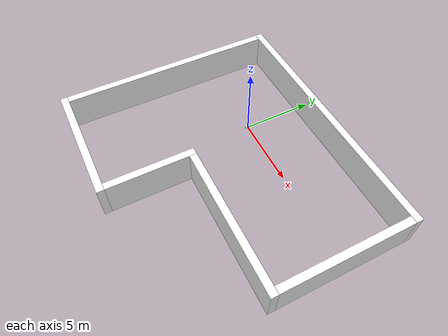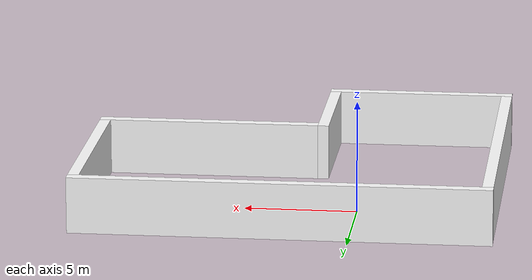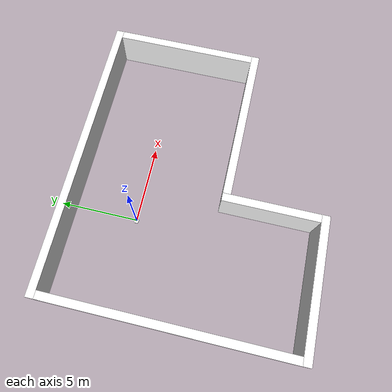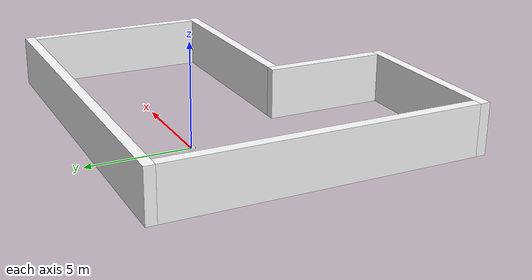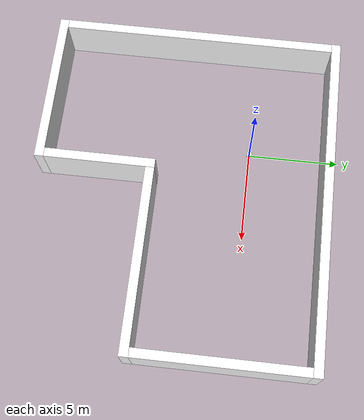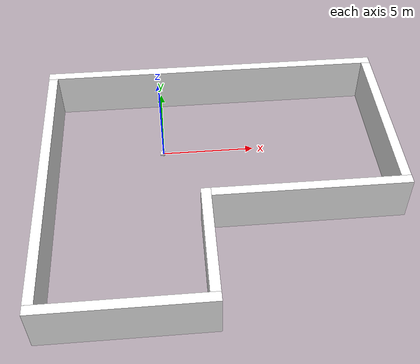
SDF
<sdf version="1.9">
 <world name="default">
  <plugin filename="gz-sim-physics-system" name="gz::sim::systems::Physics"/>
  <plugin filename="gz-sim-user-commands-system" name="gz::sim::systems::UserCommands"/>
  <plugin filename="gz-sim-scene-broadcaster-system" name="gz::sim::systems::SceneBroadcaster"/>
  <plugin filename="gz-sim-sensors-system" name="gz::sim::systems::Sensors">
   <render_engine>ogre2</render_engine>
  </plugin>
  <light type="directional" name="sun">
   <cast_shadows>0</cast_shadows>
   <pose>-5 -3 10 0 0 0</pose>
   <diffuse>1 1 1 1</diffuse>
   <specular>1 1 1 1</specular>
   <direction>0 0 -1</direction>
   <visualize>false</visualize>
  </light>
  <model name="ground_plane">
   <static>true</static>
   <link name="link">
    <collision name="collision">
     <geometry><plane><normal>0.0 0.0 1</normal><size>1 1</size></plane></geometry>
    </collision>
   </link>
  </model>
  <include><name>turtlebot3_waffle</name><uri>model://turtlebot3_waffle</uri></include>
  <include><name>small_mapping_warehouse</name><uri>model://small_mapping_warehouse</uri></include>
 </world>
</sdf>

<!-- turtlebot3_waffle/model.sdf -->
<sdf version="1.5">
  <model name="turtlebot3_waffle">
  <pose>0.0 0.0 0.0 0.0 0.0 0.0</pose>

    <link name="base_footprint"/>

    <link name="base_link">

      <inertial>
        <pose>-0.064 0 0.048 0 0 0</pose>
        <inertia>
          <ixx>4.2111447e-02</ixx>
          <ixy>0</ixy>
          <ixz>0</ixz>
          <iyy>4.2111447e-02</iyy>
          <iyz>0</iyz>
          <izz>7.5254874e-02</izz>
        </inertia>
        <mass>1.3729096e+00</mass>
      </inertial>

      <collision name="base_collision">
        <pose>-0.064 0 0.048 0 0 0</pose>
        <geometry>
          <box>
            <size>0.265 0.265 0.089</size>
          </box>
        </geometry>
      </collision>

      <visual name="base_visual">
        <pose>-0.064 0 0 0 0 0</pose>
        <geometry>
          <mesh>
            <uri>model://turtlebot3_common/meshes/waffle_base.dae</uri>
            <scale>0.001 0.001 0.001</scale>
          </mesh>
        </geometry>
        <material>
          <ambient>1 1 1 1</ambient>
          <diffuse>1 1 1 1</diffuse>
          <specular>0.2 0.2 0.2 1</specular>
          <emissive>0 0 0 1</emissive>
        </material>
      </visual>
    </link>

    <link name="imu_link">
      <sensor name="tb3_imu" type="imu">
        <always_on>true</always_on>
        <update_rate>200</update_rate>
        <topic>imu</topic>
        <imu>
          <angular_velocity>
            <x>
              <noise type="gaussian">
                <mean>0.0</mean>
                <stddev>2e-4</stddev>
              </noise>
            </x>
            <y>
              <noise type="gaussian">
                <mean>0.0</mean>
                <stddev>2e-4</stddev>
              </noise>
            </y>
            <z>
              <noise type="gaussian">
                <mean>0.0</mean>
                <stddev>2e-4</stddev>
              </noise>
            </z>
          </angular_velocity>
          <linear_acceleration>
            <x>
              <noise type="gaussian">
                <mean>0.0</mean>
                <stddev>1.7e-2</stddev>
              </noise>
            </x>
            <y>
              <noise type="gaussian">
                <mean>0.0</mean>
                <stddev>1.7e-2</stddev>
              </noise>
            </y>
            <z>
              <noise type="gaussian">
                <mean>0.0</mean>
                <stddev>1.7e-2</stddev>
              </noise>
            </z>
          </linear_acceleration>
        </imu>
      </sensor>
    </link>

    <link name="base_scan">
      <inertial>
        <pose>-0.052 0 0.111 0 0 0</pose>
        <inertia>
          <ixx>0.001</ixx>
          <ixy>0.000</ixy>
          <ixz>0.000</ixz>
          <iyy>0.001</iyy>
          <iyz>0.000</iyz>
          <izz>0.001</izz>
        </inertia>
        <mass>0.114</mass>
      </inertial>

      <collision name="lidar_sensor_collision">
        <pose>-0.052 0 0.111 0 0 0</pose>
        <geometry>
          <cylinder>
            <radius>0.0508</radius>
            <length>0.055</length>
          </cylinder>
        </geometry>
      </collision>

      <visual name="lidar_sensor_visual">
        <pose>-0.064 0 0.121 0 0 0</pose>
        <geometry>
          <mesh>
            <uri>model://turtlebot3_common/meshes/lds.dae</uri>
            <scale>0.001 0.001 0.001</scale>
          </mesh>
        </geometry>
        <material>
          <ambient>1 1 1 1</ambient>
          <diffuse>1 1 1 1</diffuse>
          <specular>0.2 0.2 0.2 1</specular>
          <emissive>0 0 0 1</emissive>
        </material>
      </visual>

      <sensor name="hls_lfcd_lds" type="gpu_lidar">
        <always_on>true</always_on>
        <visualize>true</visualize>
        <pose>-0.064 0 0.121 0 0 0</pose>
        <update_rate>5</update_rate>
        <topic>scan</topic>
        <gz_frame_id>base_scan</gz_frame_id>
        <lidar>
          <scan>
            <horizontal>
              <samples>360</samples>
              <resolution>1.000000</resolution>
              <min_angle>0.000000</min_angle>
              <max_angle>6.280000</max_angle>
            </horizontal>
          </scan>
          <range>
            <min>0.20000</min>
            <max>3.5</max>
            <resolution>0.015000</resolution>
          </range>
        </lidar>
      </sensor>
    </link>

    <link name="wheel_left_link">

      <inertial>
        <pose>0.0 0.144 0.023 -1.57 0 0</pose>
        <inertia>
          <ixx>1.1175580e-05</ixx>
          <ixy>-4.2369783e-11</ixy>
          <ixz>-5.9381719e-09</ixz>
          <iyy>1.1192413e-05</iyy>
          <iyz>-1.4400107e-11</iyz>
          <izz>2.0712558e-05</izz>
        </inertia>
        <mass>0.1</mass>
      </inertial>

      <collision name="wheel_left_collision">
        <pose>0.0 0.144 0.023 -1.57 0 0</pose>
        <geometry>
          <cylinder>
            <radius>0.033</radius>
            <length>0.018</length>
          </cylinder>
        </geometry>
        <surface>
          <!-- This friction pamareter don't contain reliable data!! -->
          <friction>
            <ode>
              <mu>100000.0</mu>
              <mu2>100000.0</mu2>
              <fdir1>0 0 0</fdir1>
              <slip1>0.0</slip1>
              <slip2>0.0</slip2>
            </ode>
          </friction>
          <contact>
            <ode>
              <soft_cfm>0</soft_cfm>
              <soft_erp>0.2</soft_erp>
              <kp>1e+5</kp>
              <kd>1</kd>
              <max_vel>0.01</max_vel>
              <min_depth>0.001</min_depth>
            </ode>
          </contact>
        </surface>
      </collision>

      <visual name="wheel_left_visual">
        <pose>0.0 0.144 0.023 0 0 0</pose>
        <geometry>
          <mesh>
            <uri>model://turtlebot3_common/meshes/tire.dae</uri>
            <scale>0.001 0.001 0.001</scale>
          </mesh>
        </geometry>
        <material>
          <ambient>1 1 1 1</ambient>
          <diffuse>1 1 1 1</diffuse>
          <specular>0.2 0.2 0.2 1</specular>
          <emissive>0 0 0 1</emissive>
        </material>
      </visual>
    </link>

    <link name="wheel_right_link">

      <inertial>
        <pose>0.0 -0.144 0.023 -1.57 0 0</pose>
        <inertia>
          <ixx>1.1175580e-05</ixx>
          <ixy>-4.2369783e-11</ixy>
          <ixz>-5.9381719e-09</ixz>
          <iyy>1.1192413e-05</iyy>
          <iyz>-1.4400107e-11</iyz>
          <izz>2.0712558e-05</izz>
        </inertia>
        <mass>0.1</mass>
      </inertial>

      <collision name="wheel_right_collision">
        <pose>0.0 -0.144 0.023 -1.57 0 0</pose>
        <geometry>
          <cylinder>
            <radius>0.033</radius>
            <length>0.018</length>
          </cylinder>
        </geometry>
        <surface>
          <!-- This friction pamareter don't contain reliable data!! -->
          <friction>
            <ode>
              <mu>100000.0</mu>
              <mu2>100000.0</mu2>
              <fdir1>0 0 0</fdir1>
              <slip1>0.0</slip1>
              <slip2>0.0</slip2>
            </ode>
          </friction>
          <contact>
            <ode>
              <soft_cfm>0</soft_cfm>
              <soft_erp>0.2</soft_erp>
              <kp>1e+5</kp>
              <kd>1</kd>
              <max_vel>0.01</max_vel>
              <min_depth>0.001</min_depth>
            </ode>
          </contact>
        </surface>
      </collision>

      <visual name="wheel_right_visual">
        <pose>0.0 -0.144 0.023 0 0 0</pose>
        <geometry>
          <mesh>
            <uri>model://turtlebot3_common/meshes/tire.dae</uri>
            <scale>0.001 0.001 0.001</scale>
          </mesh>
        </geometry>
        <material>
          <ambient>1 1 1 1</ambient>
          <diffuse>1 1 1 1</diffuse>
          <specular>0.2 0.2 0.2 1</specular>
          <emissive>0 0 0 1</emissive>
        </material>
      </visual>
    </link>

    <link name='caster_back_right_link'>
      <pose>-0.177 -0.064 -0.004 -1.57 0 0</pose>
      <inertial>
        <mass>0.001</mass>
        <inertia>
          <ixx>0.00001</ixx>
          <ixy>0.000</ixy>
          <ixz>0.000</ixz>
          <iyy>0.00001</iyy>
          <iyz>0.000</iyz>
          <izz>0.00001</izz>
        </inertia>
      </inertial>
      <collision name='collision'>
        <geometry>
          <sphere>
            <radius>0.005000</radius>
          </sphere>
        </geometry>
        <surface>
          <contact>
            <ode>
              <soft_cfm>0</soft_cfm>
              <soft_erp>0.2</soft_erp>
              <kp>1e+5</kp>
              <kd>1</kd>
              <max_vel>0.01</max_vel>
              <min_depth>0.001</min_depth>
            </ode>
          </contact>
        </surface>
      </collision>
    </link>

    <link name='caster_back_left_link'>
      <pose>-0.177 0.064 -0.004 -1.57 0 0</pose>
      <inertial>
        <mass>0.001</mass>
        <inertia>
          <ixx>0.00001</ixx>
          <ixy>0.000</ixy>
          <ixz>0.000</ixz>
          <iyy>0.00001</iyy>
          <iyz>0.000</iyz>
          <izz>0.00001</izz>
        </inertia>
      </inertial>
      <collision name='collision'>
        <geometry>
          <sphere>
            <radius>0.005000</radius>
          </sphere>
        </geometry>
        <surface>
          <contact>
            <ode>
              <soft_cfm>0</soft_cfm>
              <soft_erp>0.2</soft_erp>
              <kp>1e+5</kp>
              <kd>1</kd>
              <max_vel>0.01</max_vel>
              <min_depth>0.001</min_depth>
            </ode>
          </contact>
        </surface>
      </collision>
    </link>

    <link name="camera_link"/>

    <link name="camera_rgb_frame">
      <inertial>
        <pose>0.069 -0.047 0.107 0 -0.35 0</pose>
        <inertia>
          <ixx>0.001</ixx>
          <ixy>0.000</ixy>
          <ixz>0.000</ixz>
          <iyy>0.001</iyy>
          <iyz>0.000</iyz>
          <izz>0.001</izz>
        </inertia>
        <mass>0.035</mass>
      </inertial>

      <pose>0.069 -0.047 0.107 0 -0.35 0</pose>
      <sensor name="camera" type="camera">
        <always_on>true</always_on>
        <visualize>true</visualize>
        <update_rate>30</update_rate>
        <topic>camera/image_raw</topic>
        <gz_frame_id>camera_rgb_frame</gz_frame_id>
        <camera name="intel_realsense_r200">
          <camera_info_topic>camera/camera_info</camera_info_topic>
          <horizontal_fov>1.02974</horizontal_fov>
          <image>
            <width>1920</width>
            <height>1080</height>
            <format>R8G8B8</format>
          </image>
          <clip>
            <near>0.02</near>
            <far>300</far>
          </clip>
          <noise>
            <type>gaussian</type>
            <mean>0.0</mean>
            <stddev>0.007</stddev>
          </noise>
        </camera>
      </sensor>
    </link>

    <link name="camera_depth_frame">
      <inertial>
        <pose>0.069 -0.047 0.107 0 0 0</pose>
        <inertia>
          <ixx>0.001</ixx>
          <ixy>0.000</ixy>
          <ixz>0.000</ixz>
          <iyy>0.001</iyy>
          <iyz>0.000</iyz>
          <izz>0.001</izz>
        </inertia>
        <mass>0.035</mass>
      </inertial>

      <pose>0.069 -0.047 0.107 0 0 0</pose>
      <sensor name="camera_ir" type="depth_camera">
        <always_on>true</always_on>
        <visualize>true</visualize>
        <update_rate>10</update_rate>
        <topic>camera/depth</topic>
        <gz_frame_id>camera_depth_frame</gz_frame_id>
        <camera>
          <camera_info_topic>camera/camera_info</camera_info_topic>
          <horizontal_fov>1.02974</horizontal_fov>
          <image>
            <width>1920</width>
            <height>1020</height>
            <format>R_FLOAT32</format>
          </image>
          <clip>
            <near>0.1</near>
            <far>300.0</far>
          </clip>
        </camera>
      </sensor>
    </link>

    <joint name="base_joint" type="fixed">
      <parent>base_footprint</parent>
      <child>base_link</child>
      <pose>0.0 0.0 0.010 0 0 0</pose>
    </joint>

    <joint name="wheel_left_joint" type="revolute">
      <parent>base_link</parent>
      <child>wheel_left_link</child>
      <pose>0.0 0.144 0.023 -1.57 0 0</pose>
      <axis>
        <xyz>0 0 1</xyz>
        <limit>
          <effort>20</effort>
        </limit>
      </axis>
    </joint>

    <joint name="wheel_right_joint" type="revolute">
      <parent>base_link</parent>
      <child>wheel_right_link</child>
      <pose>0.0 -0.144 0.023 -1.57 0 0</pose>
      <axis>
        <xyz>0 0 1</xyz>
        <limit>
          <effort>20</effort>
        </limit>
      </axis>
    </joint>

    <joint name='caster_back_right_joint' type='ball'>
      <parent>base_link</parent>
      <child>caster_back_right_link</child>
    </joint>

    <joint name='caster_back_left_joint' type='ball'>
      <parent>base_link</parent>
      <child>caster_back_left_link</child>
    </joint>

    <joint name="imu_joint" type="fixed">
      <parent>base_link</parent>
      <child>imu_link</child>
      <pose>-0.032 0 0.068 0 0 0</pose>
      <axis>
        <xyz>0 0 1</xyz>
      </axis>
    </joint>

    <joint name="lidar_joint" type="fixed">
      <parent>base_link</parent>
      <child>base_scan</child>
      <pose>-0.064 0 0.121 0 0 0</pose>
      <axis>
        <xyz>0 0 1</xyz>
      </axis>
    </joint>

    <joint name="camera_joint" type="fixed">
      <parent>base_link</parent>
      <child>camera_link</child>
      <pose>0.064 -0.065 0.094 0 0 0</pose>
      <axis>
        <xyz>0 0 1</xyz>
      </axis>
    </joint>

    <joint name="camera_rgb_joint" type="fixed">
      <parent>camera_link</parent>
      <child>camera_rgb_frame</child>
      <pose>0.005 0.018 0.013 0 0 0</pose>
      <axis>
        <xyz>0 0 1</xyz>
      </axis>
    </joint>

    <joint name="camera_depth_joint" type="fixed">
      <parent>camera_link</parent>
      <child>camera_depth_frame</child>
      <pose>0.005 0.018 0.013 0 0 0</pose>
      <axis>
        <xyz>0 0 1</xyz>
      </axis>
    </joint>

    <plugin filename="gz-sim-diff-drive-system" name="gz::sim::systems::DiffDrive">
      <!-- wheels -->
      <left_joint>wheel_left_joint</left_joint>
      <right_joint>wheel_right_joint</right_joint>

      <!-- kinematics -->
      <wheel_separation>0.287</wheel_separation>
      <wheel_radius>0.033</wheel_radius>

      <!-- limits -->
      <max_linear_acceleration>1.0</max_linear_acceleration>

      <topic>cmd_vel</topic>

      <odom_topic>odom</odom_topic>
      <frame_id>odom</frame_id>
      <tf_topic>/tf</tf_topic>
      <odom_publisher_frequency>30</odom_publisher_frequency>
      <child_frame_id>base_footprint</child_frame_id>

    </plugin>

    <plugin filename="gz-sim-joint-state-publisher-system"
      name="gz::sim::systems::JointStatePublisher">
      <topic>joint_states</topic>
      <joint_name>wheel_left_joint</joint_name>
      <joint_name>wheel_right_joint</joint_name>
    </plugin>

  </model>
</sdf>

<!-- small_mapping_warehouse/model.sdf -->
<sdf version='1.8'>
  <model name='small_mapping_warehouse'>
    <static>true</static>
    <link name='Wall_0'>
      <collision name='Wall_0_Collision'>
        <geometry>
          <box>
            <size>9 0.5 2.5</size>
          </box>
        </geometry>
        <pose>0 0 0 0 -0 0</pose>
        <max_contacts>10</max_contacts>
        <surface>
          <bounce/>
          <friction>
            <ode/>
          </friction>
          <contact>
            <ode/>
          </contact>
        </surface>
      </collision>
      <visual name='Wall_0_Visual'>
        <pose>0 0 0 0 -0 0</pose>
        <geometry>
          <box>
            <size>9 0.5 2.5</size>
          </box>
        </geometry>
        <material>
          <diffuse>1.0 1.0 1.0 1.0</diffuse>
          <specular>0.0 0.0 0.0 1.0</specular>
        </material>
      </visual>
      <velocity_decay>
        <linear>0</linear>
        <angular>0</angular>
      </velocity_decay>
      <pose>12 -0.5 1.25 0 -0 1.57</pose>
      <self_collide>0</self_collide>
      <kinematic>0</kinematic>
      <gravity>1</gravity>
    </link>

    <link name='Wall_1'>
      <collision name='Wall_1_Collision'>
        <geometry>
          <box>
            <size>6 0.5 2.5</size>
          </box>
        </geometry>
        <pose>0 0 0 0 -0 0</pose>
        <max_contacts>10</max_contacts>
        <surface>
          <bounce/>
          <friction>
            <ode/>
          </friction>
          <contact>
            <ode/>
          </contact>
        </surface>
      </collision>
      <visual name='Wall_1_Visual'>
        <pose>0 0 0 0 -0 0</pose>
        <geometry>
          <box>
            <size>6 0.5 2.5</size>
          </box>
        </geometry>
        <material>
          <diffuse>1.0 1.0 1.0 1.0</diffuse>
          <specular>0.0 0.0 0.0 1.0</specular>
        </material>
      </visual>
      <velocity_decay>
        <linear>0</linear>
        <angular>0</angular>
      </velocity_decay>
      <pose>2 -8 1.25 0 -0 1.57</pose>
      <self_collide>0</self_collide>
      <kinematic>0</kinematic>
      <gravity>1</gravity>
    </link>

    <link name='Wall_2'>
      <collision name='Wall_2_Collision'>
        <geometry>
          <box>
            <size>10 0.5 2.5</size>
          </box>
        </geometry>
        <pose>0 0 0 0 -0 0</pose>
        <max_contacts>10</max_contacts>
        <surface>
          <bounce/>
          <friction>
            <ode/>
          </friction>
          <contact>
            <ode/>
          </contact>
        </surface>
      </collision>
      <visual name='Wall_2_Visual'>
        <pose>0 0 0 0 -0 0</pose>
        <geometry>
          <box>
            <size>10 0.5 2.5</size>
          </box>
        </geometry>
        <material>
          <diffuse>1.0 1.0 1.0 1.0</diffuse>
          <specular>0.0 0.0 0.0 1.0</specular>
        </material>
      </visual>
      <velocity_decay>
        <linear>0</linear>
        <angular>0</angular>
      </velocity_decay>
      <pose>7.25 -5.25 1.25 0 -0 0</pose>
      <self_collide>0</self_collide>
      <kinematic>0</kinematic>
      <gravity>1</gravity>
    </link>

    <link name='Wall_3'>
      <collision name='Wall_3_Collision'>
        <geometry>
          <box>
            <size>8.5 0.5 2.5</size>
          </box>
        </geometry>
        <pose>0 0 0 0 -0 0</pose>
        <max_contacts>10</max_contacts>
        <surface>
          <bounce/>
          <friction>
            <ode/>
          </friction>
          <contact>
            <ode/>
          </contact>
        </surface>
      </collision>
      <visual name='Wall_3_Visual'>
        <pose>0 0 0 0 -0 0</pose>
        <geometry>
          <box>
            <size>8.5 0.5 2.5</size>
          </box>
        </geometry>
        <material>
          <diffuse>1.0 1.0 1.0 1.0</diffuse>
          <specular>0.0 0.0 0.0 1.0</specular>
        </material>
      </visual>
      <velocity_decay>
        <linear>0</linear>
        <angular>0</angular>
      </velocity_decay>
      <pose>-2 -11.25 1.25 0 -0 0</pose>
      <self_collide>0</self_collide>
      <kinematic>0</kinematic>
      <gravity>1</gravity>
    </link>

    <link name='Wall_4'>
      <collision name='Wall_4_Collision'>
        <geometry>
          <box>
            <size>15 0.5 2.5</size>
          </box>
        </geometry>
        <pose>0 0 0 0 -0 0</pose>
        <max_contacts>10</max_contacts>
        <surface>
          <bounce/>
          <friction>
            <ode/>
          </friction>
          <contact>
            <ode/>
          </contact>
        </surface>
      </collision>
      <visual name='Wall_4_Visual'>
        <pose>0 0 0 0 -0 0</pose>
        <geometry>
          <box>
            <size>15 0.5 2.5</size>
          </box>
        </geometry>
        <material>
          <diffuse>1.0 1.0 1.0 1.0</diffuse>
          <specular>0.0 0.0 0.0 1.0</specular>
        </material>
      </visual>
      <velocity_decay>
        <linear>0</linear>
        <angular>0</angular>
      </velocity_decay>
      <pose>-6 -3.5 1.25 0 -0 1.57</pose>
      <self_collide>0</self_collide>
      <kinematic>0</kinematic>
      <gravity>1</gravity>
    </link>

    <link name='Wall_5'>
      <collision name='Wall_5_Collision'>
        <geometry>
          <box>
            <size>18.5 0.5 2.5</size>
          </box>
        </geometry>
        <pose>0 0 0 0 -0 0</pose>
        <max_contacts>10</max_contacts>
        <surface>
          <bounce/>
          <friction>
            <ode/>
          </friction>
          <contact>
            <ode/>
          </contact>
        </surface>
      </collision>
      <visual name='Wall_5_Visual'>
        <pose>0 0 0 0 -0 0</pose>
        <geometry>
          <box>
            <size>18.5 0.5 2.5</size>
          </box>
        </geometry>
        <material>
          <diffuse>1.0 1.0 1.0 1.0</diffuse>
          <specular>0.0 0.0 0.0 1.0</specular>
        </material>
      </visual>
      <velocity_decay>
        <linear>0</linear>
        <angular>0</angular>
      </velocity_decay>
      <pose>3 4.25 1.25 0 -0 0</pose>
      <self_collide>0</self_collide>
      <kinematic>0</kinematic>
      <gravity>1</gravity>
    </link>

    <static>1</static>
    <pose>0 0 0 0 -0 0</pose>
  </model>
</sdf>
